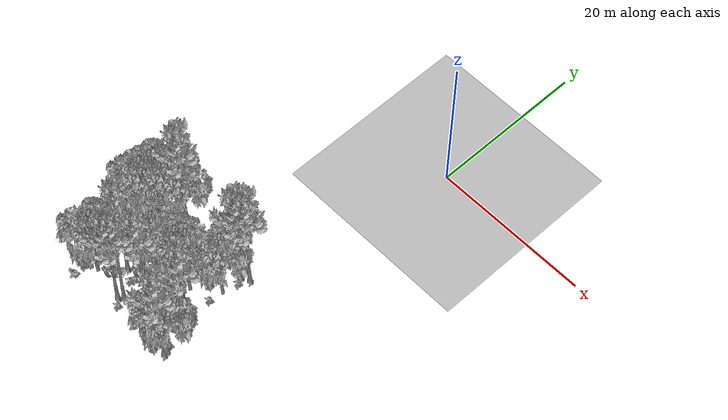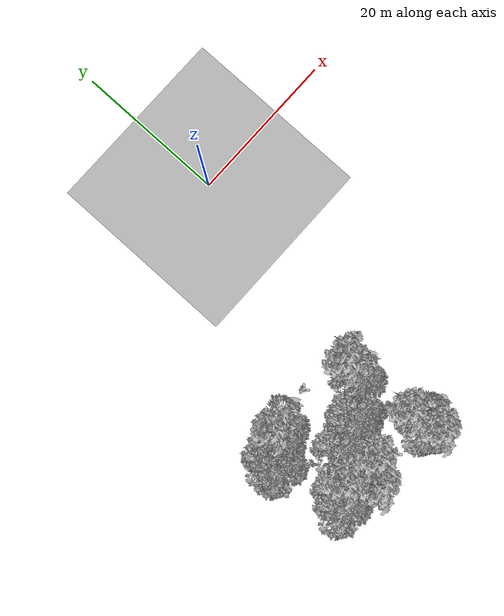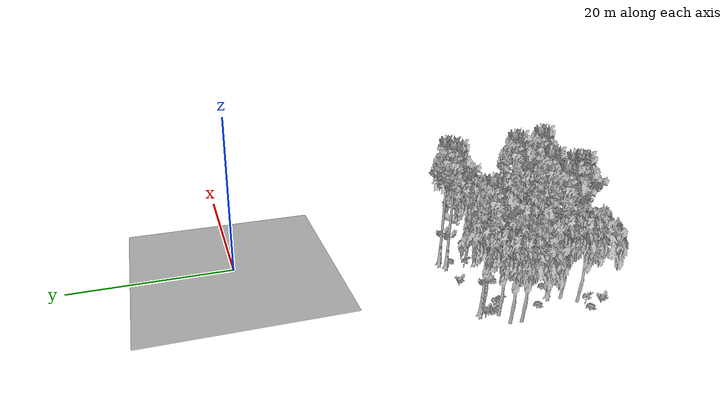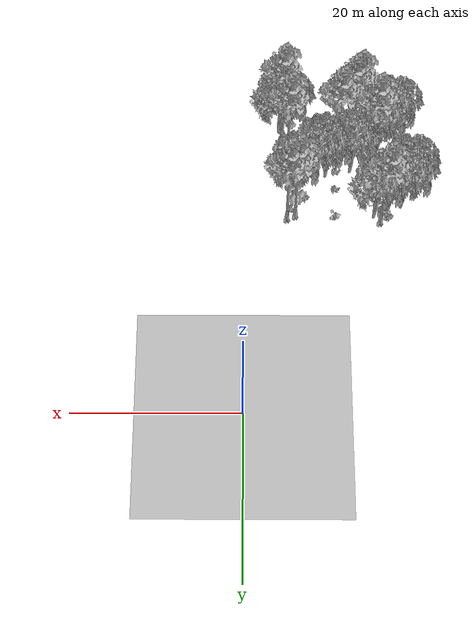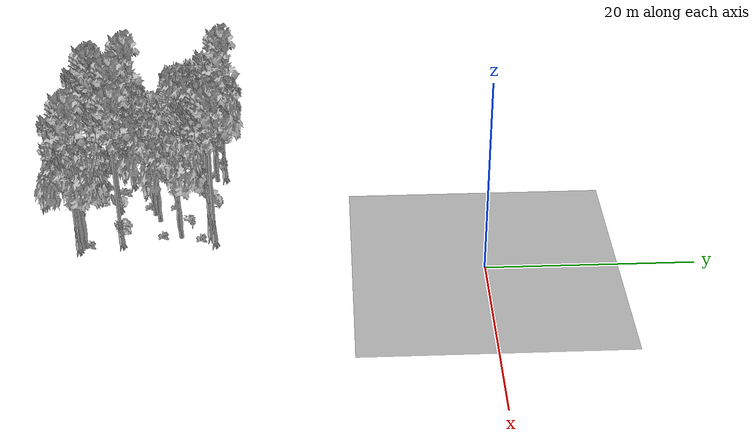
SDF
<sdf version="1.7">
 <world name="default">
  <model name="ground_plane">
   <static>1</static>
   <link name="link">
    <collision name="collision">
     <pose>-50 0 0 0 -0 0</pose>
     <geometry><plane><normal>0 0 1</normal><size>80 80</size></plane></geometry>
     <surface><contact><ode><min_depth>0.01</min_depth><max_vel>0</max_vel></ode></contact></surface>
    </collision>
    <visual name="grass">
     <cast_shadows>0</cast_shadows>
     <geometry>
      <mesh>
       <scale>0.46714285714285714 0.46714285714285714 0.1</scale>
       <uri>file://grass_plane/meshes/grass_plane.dae</uri>
      </mesh>
     </geometry>
    </visual>
   </link>
  </model>
  <model name="Tree 14">
   <static>1</static>
   <pose>-5.477188524623877 -34.77827628285769 0 1.57079 -0 0</pose>
   <link name="link">
    <collision name="collision">
     <geometry><mesh><scale>3.5 5 3.5</scale><uri>model://tree_9/meshes/tree_9.obj</uri></mesh></geometry>
    </collision>
    <visual name="visual">
     <geometry><mesh><scale>3.5 5 3.5</scale><uri>model://tree_9/meshes/tree_9.obj</uri></mesh></geometry>
    </visual>
   </link>
  </model>
  <model name="Tree 51">
   <static>1</static>
   <pose>-10.229346671937382 -31.95085222240828 0 1.57079 -0 0</pose>
   <link name="link">
    <collision name="collision">
     <geometry><mesh><scale>3.5 5 3.5</scale><uri>model://tree_2/meshes/tree_2.obj</uri></mesh></geometry>
    </collision>
    <visual name="visual">
     <geometry><mesh><scale>3.5 5 3.5</scale><uri>model://tree_2/meshes/tree_2.obj</uri></mesh></geometry>
    </visual>
   </link>
  </model>
  <model name="Tree 61">
   <static>1</static>
   <pose>-13.704694025410852 -37.89620301213462 0 1.57079 -0 0</pose>
   <link name="link">
    <collision name="collision">
     <geometry><mesh><scale>3.5 5 3.5</scale><uri>model://tree_9/meshes/tree_9.obj</uri></mesh></geometry>
    </collision>
    <visual name="visual">
     <geometry><mesh><scale>3.5 5 3.5</scale><uri>model://tree_9/meshes/tree_9.obj</uri></mesh></geometry>
    </visual>
   </link>
  </model>
  <model name="Tree 138">
   <static>1</static>
   <pose>-4.725478819456534 -38.838083006359355 0 1.57079 -0 0</pose>
   <link name="link">
    <collision name="collision">
     <geometry><mesh><scale>3.5 5 3.5</scale><uri>model://tree_9/meshes/tree_9.obj</uri></mesh></geometry>
    </collision>
    <visual name="visual">
     <geometry><mesh><scale>3.5 5 3.5</scale><uri>model://tree_9/meshes/tree_9.obj</uri></mesh></geometry>
    </visual>
   </link>
  </model>
  <model name="Tree 154">
   <static>1</static>
   <pose>-9.099050910505849 -31.385689160673866 0 1.57079 -0 0</pose>
   <link name="link">
    <collision name="collision">
     <geometry><mesh><scale>3.5 5 3.5</scale><uri>model://tree_2/meshes/tree_2.obj</uri></mesh></geometry>
    </collision>
    <visual name="visual">
     <geometry><mesh><scale>3.5 5 3.5</scale><uri>model://tree_2/meshes/tree_2.obj</uri></mesh></geometry>
    </visual>
   </link>
  </model>
  <model name="Tree 274">
   <static>1</static>
   <pose>-4.859268695701509 -38.14307573825927 0 1.57079 -0 0</pose>
   <link name="link">
    <collision name="collision">
     <geometry><mesh><scale>3.5 5 3.5</scale><uri>model://tree_2/meshes/tree_2.obj</uri></mesh></geometry>
    </collision>
    <visual name="visual">
     <geometry><mesh><scale>3.5 5 3.5</scale><uri>model://tree_2/meshes/tree_2.obj</uri></mesh></geometry>
    </visual>
   </link>
  </model>
  <model name="Tree 328">
   <static>1</static>
   <pose>-6.329402452604107 -26.259860248014625 0 1.57079 -0 0</pose>
   <link name="link">
    <collision name="collision">
     <geometry><mesh><scale>3.5 5 3.5</scale><uri>model://tree_9/meshes/tree_9.obj</uri></mesh></geometry>
    </collision>
    <visual name="visual">
     <geometry><mesh><scale>3.5 5 3.5</scale><uri>model://tree_9/meshes/tree_9.obj</uri></mesh></geometry>
    </visual>
   </link>
  </model>
  <model name="Tree 334">
   <static>1</static>
   <pose>-16.082695805947395 -26.11161720756381 0 1.57079 -0 0</pose>
   <link name="link">
    <collision name="collision">
     <geometry><mesh><scale>3.5 5 3.5</scale><uri>model://tree_2/meshes/tree_2.obj</uri></mesh></geometry>
    </collision>
    <visual name="visual">
     <geometry><mesh><scale>3.5 5 3.5</scale><uri>model://tree_2/meshes/tree_2.obj</uri></mesh></geometry>
    </visual>
   </link>
  </model>
  <model name="Tree 367">
   <static>1</static>
   <pose>-17.865371580824327 -27.076252476943097 0 1.57079 -0 0</pose>
   <link name="link">
    <collision name="collision">
     <geometry><mesh><scale>3.5 5 3.5</scale><uri>model://tree_2/meshes/tree_2.obj</uri></mesh></geometry>
    </collision>
    <visual name="visual">
     <geometry><mesh><scale>3.5 5 3.5</scale><uri>model://tree_2/meshes/tree_2.obj</uri></mesh></geometry>
    </visual>
   </link>
  </model>
  <model name="Tree 372">
   <static>1</static>
   <pose>-16.75477908486619 -25.334550084507306 0 1.57079 -0 0</pose>
   <link name="link">
    <collision name="collision">
     <geometry><mesh><scale>3.5 5 3.5</scale><uri>model://tree_9/meshes/tree_9.obj</uri></mesh></geometry>
    </collision>
    <visual name="visual">
     <geometry><mesh><scale>3.5 5 3.5</scale><uri>model://tree_9/meshes/tree_9.obj</uri></mesh></geometry>
    </visual>
   </link>
  </model>
  <model name="Tree 411">
   <static>1</static>
   <pose>-4.494107026909859 -38.4704878869329 0 1.57079 -0 0</pose>
   <link name="link">
    <collision name="collision">
     <geometry><mesh><scale>3.5 5 3.5</scale><uri>model://tree_2/meshes/tree_2.obj</uri></mesh></geometry>
    </collision>
    <visual name="visual">
     <geometry><mesh><scale>3.5 5 3.5</scale><uri>model://tree_2/meshes/tree_2.obj</uri></mesh></geometry>
    </visual>
   </link>
  </model>
  <model name="Tree 436">
   <static>1</static>
   <pose>-16.847843287334477 -35.77890935948052 0 1.57079 -0 0</pose>
   <link name="link">
    <collision name="collision">
     <geometry><mesh><scale>3.5 5 3.5</scale><uri>model://tree_2/meshes/tree_2.obj</uri></mesh></geometry>
    </collision>
    <visual name="visual">
     <geometry><mesh><scale>3.5 5 3.5</scale><uri>model://tree_2/meshes/tree_2.obj</uri></mesh></geometry>
    </visual>
   </link>
  </model>
  <model name="Tree 449">
   <static>1</static>
   <pose>-13.316472016940544 -32.6264718497811 0 1.57079 -0 0</pose>
   <link name="link">
    <collision name="collision">
     <geometry><mesh><scale>3.5 5 3.5</scale><uri>model://tree_2/meshes/tree_2.obj</uri></mesh></geometry>
    </collision>
    <visual name="visual">
     <geometry><mesh><scale>3.5 5 3.5</scale><uri>model://tree_2/meshes/tree_2.obj</uri></mesh></geometry>
    </visual>
   </link>
  </model>
  <model name="Tree 474">
   <static>1</static>
   <pose>-13.151220141130793 -37.418477084895514 0 1.57079 -0 0</pose>
   <link name="link">
    <collision name="collision">
     <geometry><mesh><scale>3.5 5 3.5</scale><uri>model://tree_9/meshes/tree_9.obj</uri></mesh></geometry>
    </collision>
    <visual name="visual">
     <geometry><mesh><scale>3.5 5 3.5</scale><uri>model://tree_9/meshes/tree_9.obj</uri></mesh></geometry>
    </visual>
   </link>
  </model>
  <model name="Tree 510">
   <static>1</static>
   <pose>-15.823143173426288 -34.67966054248714 0 1.57079 -0 0</pose>
   <link name="link">
    <collision name="collision">
     <geometry><mesh><scale>3.5 5 3.5</scale><uri>model://tree_9/meshes/tree_9.obj</uri></mesh></geometry>
    </collision>
    <visual name="visual">
     <geometry><mesh><scale>3.5 5 3.5</scale><uri>model://tree_9/meshes/tree_9.obj</uri></mesh></geometry>
    </visual>
   </link>
  </model>
  <model name="Tree 580">
   <static>1</static>
   <pose>-18.01097867995224 -37.22788071041993 0 1.57079 -0 0</pose>
   <link name="link">
    <collision name="collision">
     <geometry><mesh><scale>3.5 5 3.5</scale><uri>model://tree_2/meshes/tree_2.obj</uri></mesh></geometry>
    </collision>
    <visual name="visual">
     <geometry><mesh><scale>3.5 5 3.5</scale><uri>model://tree_2/meshes/tree_2.obj</uri></mesh></geometry>
    </visual>
   </link>
  </model>
  <model name="Tree 592">
   <static>1</static>
   <pose>-6.209763936694891 -29.101548481730237 0 1.57079 -0 0</pose>
   <link name="link">
    <collision name="collision">
     <geometry><mesh><scale>3.5 5 3.5</scale><uri>model://tree_2/meshes/tree_2.obj</uri></mesh></geometry>
    </collision>
    <visual name="visual">
     <geometry><mesh><scale>3.5 5 3.5</scale><uri>model://tree_2/meshes/tree_2.obj</uri></mesh></geometry>
    </visual>
   </link>
  </model>
  <model name="Tree 604">
   <static>1</static>
   <pose>-11.528602122003644 -35.61720339952488 0 1.57079 -0 0</pose>
   <link name="link">
    <collision name="collision">
     <geometry><mesh><scale>3.5 5 3.5</scale><uri>model://tree_9/meshes/tree_9.obj</uri></mesh></geometry>
    </collision>
    <visual name="visual">
     <geometry><mesh><scale>3.5 5 3.5</scale><uri>model://tree_9/meshes/tree_9.obj</uri></mesh></geometry>
    </visual>
   </link>
  </model>
  <model name="Tree 610">
   <static>1</static>
   <pose>-5.310220958928383 -25.78981753046973 0 1.57079 -0 0</pose>
   <link name="link">
    <collision name="collision">
     <geometry><mesh><scale>3.5 5 3.5</scale><uri>model://tree_9/meshes/tree_9.obj</uri></mesh></geometry>
    </collision>
    <visual name="visual">
     <geometry><mesh><scale>3.5 5 3.5</scale><uri>model://tree_9/meshes/tree_9.obj</uri></mesh></geometry>
    </visual>
   </link>
  </model>
  <model name="Tree 635">
   <static>1</static>
   <pose>-19.490397337127476 -27.545017858373217 0 1.57079 -0 0</pose>
   <link name="link">
    <collision name="collision">
     <geometry><mesh><scale>3.5 5 3.5</scale><uri>model://tree_2/meshes/tree_2.obj</uri></mesh></geometry>
    </collision>
    <visual name="visual">
     <geometry><mesh><scale>3.5 5 3.5</scale><uri>model://tree_2/meshes/tree_2.obj</uri></mesh></geometry>
    </visual>
   </link>
  </model>
  <model name="Tree 638">
   <static>1</static>
   <pose>-19.60910965359108 -28.91313209217668 0 1.57079 -0 0</pose>
   <link name="link">
    <collision name="collision">
     <geometry><mesh><scale>3.5 5 3.5</scale><uri>model://tree_2/meshes/tree_2.obj</uri></mesh></geometry>
    </collision>
    <visual name="visual">
     <geometry><mesh><scale>3.5 5 3.5</scale><uri>model://tree_2/meshes/tree_2.obj</uri></mesh></geometry>
    </visual>
   </link>
  </model>
  <model name="Bush 79">
   <static>1</static>
   <pose>-17.334576397335237 -32.489541191431 0 1.57079 -0 0</pose>
   <link name="link">
    <collision name="collision">
     <geometry><mesh><scale>2 2 2</scale><uri>model://bush_2/meshes/bush_2.obj</uri></mesh></geometry>
     <surface><contact><collide_without_contact>false</collide_without_contact></contact></surface>
    </collision>
    <visual name="visual">
     <geometry><mesh><scale>2 2 2</scale><uri>model://bush_2/meshes/bush_2.obj</uri></mesh></geometry>
    </visual>
   </link>
  </model>
  <model name="Bush 122">
   <static>1</static>
   <pose>-19.35860304378775 -38.05916633176033 0 1.57079 -0 0</pose>
   <link name="link">
    <collision name="collision">
     <geometry><mesh><scale>2 2 2</scale><uri>model://bush_2/meshes/bush_2.obj</uri></mesh></geometry>
     <surface><contact><collide_without_contact>false</collide_without_contact></contact></surface>
    </collision>
    <visual name="visual">
     <geometry><mesh><scale>2 2 2</scale><uri>model://bush_2/meshes/bush_2.obj</uri></mesh></geometry>
    </visual>
   </link>
  </model>
  <model name="Bush 142">
   <static>1</static>
   <pose>-17.014092512987776 -27.119537868646795 0 1.57079 -0 0</pose>
   <link name="link">
    <collision name="collision">
     <geometry><mesh><scale>2 2 2</scale><uri>model://bush_2/meshes/bush_2.obj</uri></mesh></geometry>
     <surface><contact><collide_without_contact>false</collide_without_contact></contact></surface>
    </collision>
    <visual name="visual">
     <geometry><mesh><scale>2 2 2</scale><uri>model://bush_2/meshes/bush_2.obj</uri></mesh></geometry>
    </visual>
   </link>
  </model>
  <model name="Bush 174">
   <static>1</static>
   <pose>-11.837288706922578 -37.37850789062197 0 1.57079 -0 0</pose>
   <link name="link">
    <collision name="collision">
     <geometry><mesh><scale>2 2 2</scale><uri>model://bush_1/meshes/bush_1.obj</uri></mesh></geometry>
     <surface><contact><collide_without_contact>false</collide_without_contact></contact></surface>
    </collision>
    <visual name="visual">
     <geometry><mesh><scale>2 2 2</scale><uri>model://bush_1/meshes/bush_1.obj</uri></mesh></geometry>
    </visual>
   </link>
  </model>
  <model name="Bush 191">
   <static>1</static>
   <pose>-11.466275614458457 -32.59125857044943 0 1.57079 -0 0</pose>
   <link name="link">
    <collision name="collision">
     <geometry><mesh><scale>2 2 2</scale><uri>model://bush_2/meshes/bush_2.obj</uri></mesh></geometry>
     <surface><contact><collide_without_contact>false</collide_without_contact></contact></surface>
    </collision>
    <visual name="visual">
     <geometry><mesh><scale>2 2 2</scale><uri>model://bush_2/meshes/bush_2.obj</uri></mesh></geometry>
    </visual>
   </link>
  </model>
  <model name="Bush 279">
   <static>1</static>
   <pose>-5.837226329987097 -27.136004910344802 0 1.57079 -0 0</pose>
   <link name="link">
    <collision name="collision">
     <geometry><mesh><scale>2 2 2</scale><uri>model://bush_2/meshes/bush_2.obj</uri></mesh></geometry>
     <surface><contact><collide_without_contact>false</collide_without_contact></contact></surface>
    </collision>
    <visual name="visual">
     <geometry><mesh><scale>2 2 2</scale><uri>model://bush_2/meshes/bush_2.obj</uri></mesh></geometry>
    </visual>
   </link>
  </model>
  <model name="Bush 280">
   <static>1</static>
   <pose>-16.187972653228503 -27.72942240009117 0 1.57079 -0 0</pose>
   <link name="link">
    <collision name="collision">
     <geometry><mesh><scale>2 2 2</scale><uri>model://bush_4/meshes/bush_4.obj</uri></mesh></geometry>
     <surface><contact><collide_without_contact>false</collide_without_contact></contact></surface>
    </collision>
    <visual name="visual">
     <geometry><mesh><scale>2 2 2</scale><uri>model://bush_4/meshes/bush_4.obj</uri></mesh></geometry>
    </visual>
   </link>
  </model>
  <model name="Bush 348">
   <static>1</static>
   <pose>-16.419091742807574 -27.734285468549498 0 1.57079 -0 0</pose>
   <link name="link">
    <collision name="collision">
     <geometry><mesh><scale>2 2 2</scale><uri>model://bush_5/meshes/bush_5.obj</uri></mesh></geometry>
     <surface><contact><collide_without_contact>false</collide_without_contact></contact></surface>
    </collision>
    <visual name="visual">
     <geometry><mesh><scale>2 2 2</scale><uri>model://bush_5/meshes/bush_5.obj</uri></mesh></geometry>
    </visual>
   </link>
  </model>
  <model name="Bush 352">
   <static>1</static>
   <pose>-11.001152171389009 -25.664811646432682 0 1.57079 -0 0</pose>
   <link name="link">
    <collision name="collision">
     <geometry><mesh><scale>2 2 2</scale><uri>model://bush_0/meshes/bush_0.obj</uri></mesh></geometry>
     <surface><contact><collide_without_contact>false</collide_without_contact></contact></surface>
    </collision>
    <visual name="visual">
     <geometry><mesh><scale>2 2 2</scale><uri>model://bush_0/meshes/bush_0.obj</uri></mesh></geometry>
    </visual>
   </link>
  </model>
  <model name="Bush 362">
   <static>1</static>
   <pose>-17.738132745871994 -25.413047076506654 0 1.57079 -0 0</pose>
   <link name="link">
    <collision name="collision">
     <geometry><mesh><scale>2 2 2</scale><uri>model://bush_5/meshes/bush_5.obj</uri></mesh></geometry>
     <surface><contact><collide_without_contact>false</collide_without_contact></contact></surface>
    </collision>
    <visual name="visual">
     <geometry><mesh><scale>2 2 2</scale><uri>model://bush_5/meshes/bush_5.obj</uri></mesh></geometry>
    </visual>
   </link>
  </model>
  <model name="Bush 379">
   <static>1</static>
   <pose>-6.744737479822476 -34.753998037928554 0 1.57079 -0 0</pose>
   <link name="link">
    <collision name="collision">
     <geometry><mesh><scale>2 2 2</scale><uri>model://bush_1/meshes/bush_1.obj</uri></mesh></geometry>
     <surface><contact><collide_without_contact>false</collide_without_contact></contact></surface>
    </collision>
    <visual name="visual">
     <geometry><mesh><scale>2 2 2</scale><uri>model://bush_1/meshes/bush_1.obj</uri></mesh></geometry>
    </visual>
   </link>
  </model>
  <model name="Bush 385">
   <static>1</static>
   <pose>-5.14711976107116 -37.795660495417565 0 1.57079 -0 0</pose>
   <link name="link">
    <collision name="collision">
     <geometry><mesh><scale>2 2 2</scale><uri>model://bush_2/meshes/bush_2.obj</uri></mesh></geometry>
     <surface><contact><collide_without_contact>false</collide_without_contact></contact></surface>
    </collision>
    <visual name="visual">
     <geometry><mesh><scale>2 2 2</scale><uri>model://bush_2/meshes/bush_2.obj</uri></mesh></geometry>
    </visual>
   </link>
  </model>
  <model name="Bush 427">
   <static>1</static>
   <pose>-18.861124034246153 -39.69598588957482 0 1.57079 -0 0</pose>
   <link name="link">
    <collision name="collision">
     <geometry><mesh><scale>2 2 2</scale><uri>model://bush_0/meshes/bush_0.obj</uri></mesh></geometry>
     <surface><contact><collide_without_contact>false</collide_without_contact></contact></surface>
    </collision>
    <visual name="visual">
     <geometry><mesh><scale>2 2 2</scale><uri>model://bush_0/meshes/bush_0.obj</uri></mesh></geometry>
    </visual>
   </link>
  </model>
  <model name="Bush 431">
   <static>1</static>
   <pose>-17.369644823269507 -25.625776505865645 0 1.57079 -0 0</pose>
   <link name="link">
    <collision name="collision">
     <geometry><mesh><scale>2 2 2</scale><uri>model://bush_0/meshes/bush_0.obj</uri></mesh></geometry>
     <surface><contact><collide_without_contact>false</collide_without_contact></contact></surface>
    </collision>
    <visual name="visual">
     <geometry><mesh><scale>2 2 2</scale><uri>model://bush_0/meshes/bush_0.obj</uri></mesh></geometry>
    </visual>
   </link>
  </model>
  <model name="Bush 450">
   <static>1</static>
   <pose>-7.514631320078461 -28.095488970484716 0 1.57079 -0 0</pose>
   <link name="link">
    <collision name="collision">
     <geometry><mesh><scale>2 2 2</scale><uri>model://bush_5/meshes/bush_5.obj</uri></mesh></geometry>
     <surface><contact><collide_without_contact>false</collide_without_contact></contact></surface>
    </collision>
    <visual name="visual">
     <geometry><mesh><scale>2 2 2</scale><uri>model://bush_5/meshes/bush_5.obj</uri></mesh></geometry>
    </visual>
   </link>
  </model>
  <model name="Bush 469">
   <static>1</static>
   <pose>-6.942019760817033 -34.77595321594143 0 1.57079 -0 0</pose>
   <link name="link">
    <collision name="collision">
     <geometry><mesh><scale>2 2 2</scale><uri>model://bush_5/meshes/bush_5.obj</uri></mesh></geometry>
     <surface><contact><collide_without_contact>false</collide_without_contact></contact></surface>
    </collision>
    <visual name="visual">
     <geometry><mesh><scale>2 2 2</scale><uri>model://bush_5/meshes/bush_5.obj</uri></mesh></geometry>
    </visual>
   </link>
  </model>
  <model name="Bush 533">
   <static>1</static>
   <pose>-18.55160724065491 -37.775118538934095 0 1.57079 -0 0</pose>
   <link name="link">
    <collision name="collision">
     <geometry><mesh><scale>2 2 2</scale><uri>model://bush_5/meshes/bush_5.obj</uri></mesh></geometry>
     <surface><contact><collide_without_contact>false</collide_without_contact></contact></surface>
    </collision>
    <visual name="visual">
     <geometry><mesh><scale>2 2 2</scale><uri>model://bush_5/meshes/bush_5.obj</uri></mesh></geometry>
    </visual>
   </link>
  </model>
  <model name="Bush 543">
   <static>1</static>
   <pose>-14.13155682170866 -35.176835492125235 0 1.57079 -0 0</pose>
   <link name="link">
    <collision name="collision">
     <geometry><mesh><scale>2 2 2</scale><uri>model://bush_2/meshes/bush_2.obj</uri></mesh></geometry>
     <surface><contact><collide_without_contact>false</collide_without_contact></contact></surface>
    </collision>
    <visual name="visual">
     <geometry><mesh><scale>2 2 2</scale><uri>model://bush_2/meshes/bush_2.obj</uri></mesh></geometry>
    </visual>
   </link>
  </model>
  <model name="Bush 556">
   <static>1</static>
   <pose>-16.98839874743722 -26.497574831478204 0 1.57079 -0 0</pose>
   <link name="link">
    <collision name="collision">
     <geometry><mesh><scale>2 2 2</scale><uri>model://bush_2/meshes/bush_2.obj</uri></mesh></geometry>
     <surface><contact><collide_without_contact>false</collide_without_contact></contact></surface>
    </collision>
    <visual name="visual">
     <geometry><mesh><scale>2 2 2</scale><uri>model://bush_2/meshes/bush_2.obj</uri></mesh></geometry>
    </visual>
   </link>
  </model>
  <model name="Bush 568">
   <static>1</static>
   <pose>-12.810629734216779 -38.67077027167757 0 1.57079 -0 0</pose>
   <link name="link">
    <collision name="collision">
     <geometry><mesh><scale>2 2 2</scale><uri>model://bush_2/meshes/bush_2.obj</uri></mesh></geometry>
     <surface><contact><collide_without_contact>false</collide_without_contact></contact></surface>
    </collision>
    <visual name="visual">
     <geometry><mesh><scale>2 2 2</scale><uri>model://bush_2/meshes/bush_2.obj</uri></mesh></geometry>
    </visual>
   </link>
  </model>
  <model name="Bush 594">
   <static>1</static>
   <pose>-6.409872149279465 -30.87501896358252 0 1.57079 -0 0</pose>
   <link name="link">
    <collision name="collision">
     <geometry><mesh><scale>2 2 2</scale><uri>model://bush_2/meshes/bush_2.obj</uri></mesh></geometry>
     <surface><contact><collide_without_contact>false</collide_without_contact></contact></surface>
    </collision>
    <visual name="visual">
     <geometry><mesh><scale>2 2 2</scale><uri>model://bush_2/meshes/bush_2.obj</uri></mesh></geometry>
    </visual>
   </link>
  </model>
  <model name="Bush 610">
   <static>1</static>
   <pose>-9.30349201377921 -39.13987105244309 0 1.57079 -0 0</pose>
   <link name="link">
    <collision name="collision">
     <geometry><mesh><scale>2 2 2</scale><uri>model://bush_0/meshes/bush_0.obj</uri></mesh></geometry>
     <surface><contact><collide_without_contact>false</collide_without_contact></contact></surface>
    </collision>
    <visual name="visual">
     <geometry><mesh><scale>2 2 2</scale><uri>model://bush_0/meshes/bush_0.obj</uri></mesh></geometry>
    </visual>
   </link>
  </model>
  <model name="Bush 625">
   <static>1</static>
   <pose>-14.337495531832701 -35.624138782436845 0 1.57079 -0 0</pose>
   <link name="link">
    <collision name="collision">
     <geometry><mesh><scale>2 2 2</scale><uri>model://bush_2/meshes/bush_2.obj</uri></mesh></geometry>
     <surface><contact><collide_without_contact>false</collide_without_contact></contact></surface>
    </collision>
    <visual name="visual">
     <geometry><mesh><scale>2 2 2</scale><uri>model://bush_2/meshes/bush_2.obj</uri></mesh></geometry>
    </visual>
   </link>
  </model>
  <model name="Bush 635">
   <static>1</static>
   <pose>-11.352747596096627 -30.03566540734426 0 1.57079 -0 0</pose>
   <link name="link">
    <collision name="collision">
     <geometry><mesh><scale>2 2 2</scale><uri>model://bush_2/meshes/bush_2.obj</uri></mesh></geometry>
     <surface><contact><collide_without_contact>false</collide_without_contact></contact></surface>
    </collision>
    <visual name="visual">
     <geometry><mesh><scale>2 2 2</scale><uri>model://bush_2/meshes/bush_2.obj</uri></mesh></geometry>
    </visual>
   </link>
  </model>
 </world>
</sdf>
